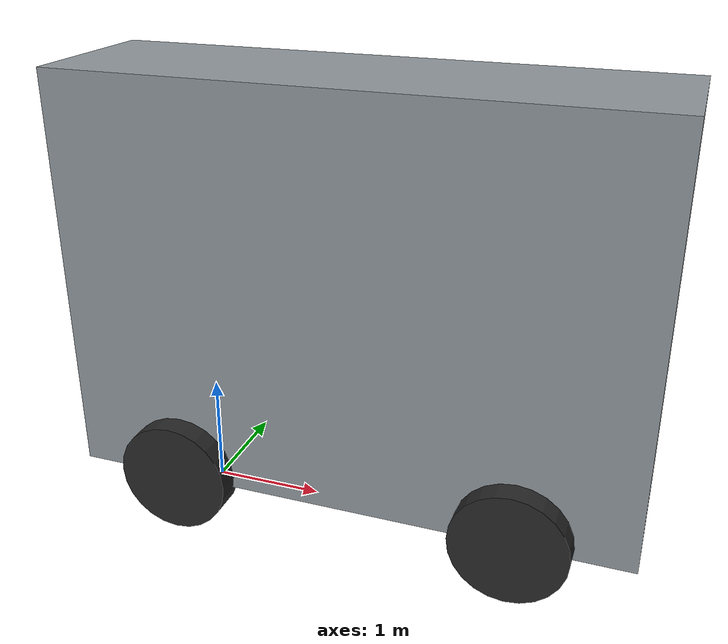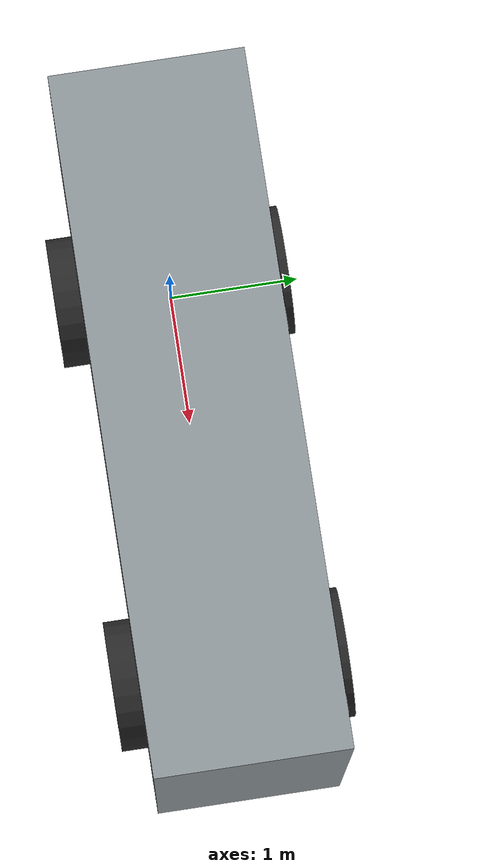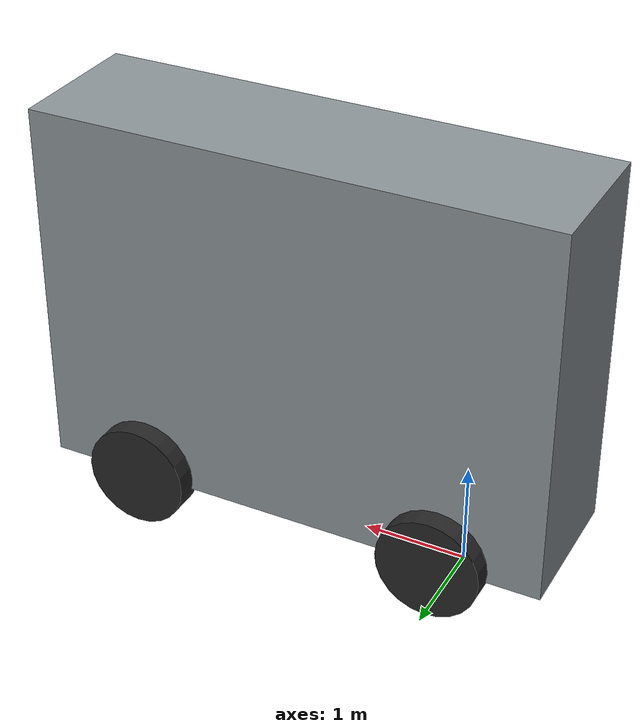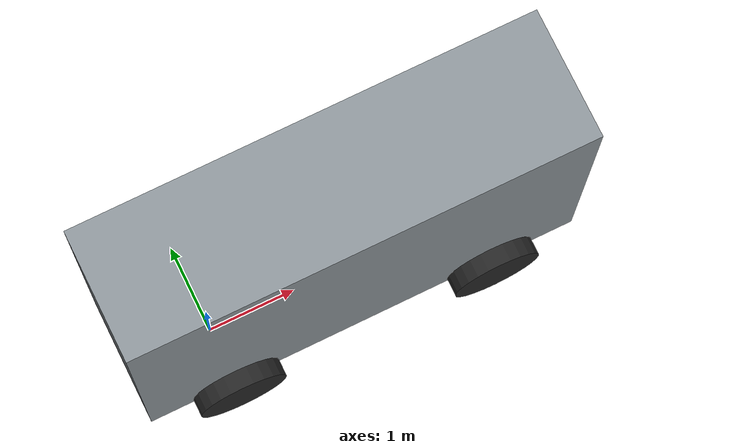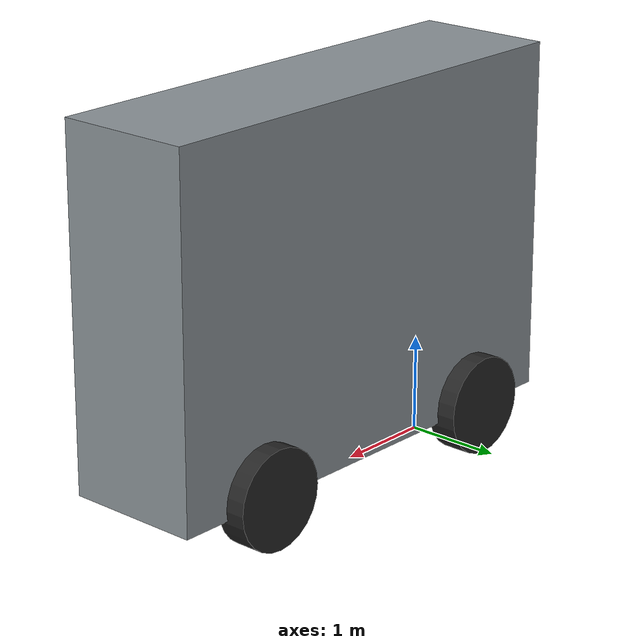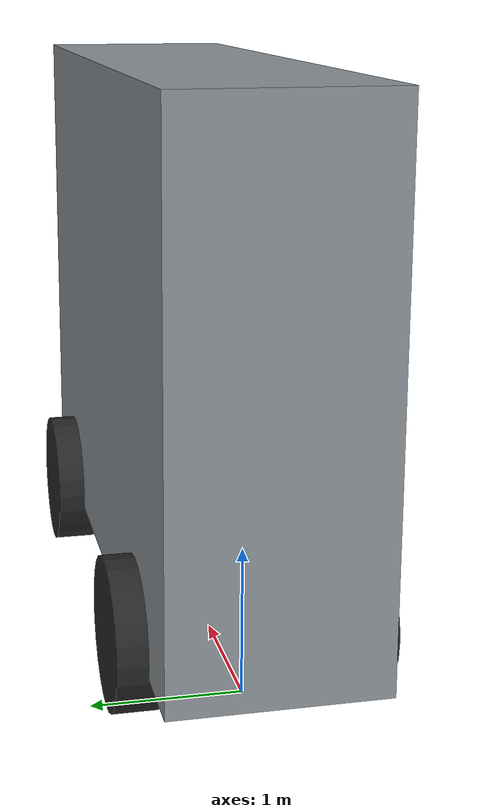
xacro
<?xml version="1.0"?>
<robot name="tunnel_vehicle" xmlns:xacro="http://www.ros.org/wiki/xacro">

  <!-- Frame: base_link at rear axle centre, projected to ground.
       x forward, y left, z up. All dimensions in metres. -->

  <xacro:property name="wheelbase"        value="3.0"/>
  <xacro:property name="track_width"      value="1.5"/>
  <xacro:property name="wheel_radius"     value="0.5"/>
  <xacro:property name="wheel_width"      value="0.3"/>
  <xacro:property name="rear_overhang"    value="1.0"/>
  <xacro:property name="front_overhang"   value="1.0"/>
  <xacro:property name="body_width"       value="1.4"/>
  <xacro:property name="body_top"         value="4.0"/>
  <xacro:property name="ground_clearance" value="0.4"/>
  <xacro:property name="max_steer"        value="0.20944"/>  <!-- 12 deg in rad -->

  <xacro:property name="body_length" value="${wheelbase + rear_overhang + front_overhang}"/>
  <xacro:property name="body_height" value="${body_top - ground_clearance}"/>
  <xacro:property name="body_cx"     value="${wheelbase/2.0 + (front_overhang - rear_overhang)/2.0}"/>
  <xacro:property name="body_cz"     value="${ground_clearance + body_height/2.0}"/>

  <xacro:property name="body_mass"  value="5000.0"/>
  <xacro:property name="wheel_mass" value="100.0"/>

  <xacro:property name="lidar_x"     value="4.2"/>
  <xacro:property name="lidar_z"     value="1.0"/>
  <xacro:property name="lidar_pitch" value="0.20944"/>  <!-- 12 deg, nose down -->

  <xacro:arg name="lidar_noise" default="0.03"/>

  <material name="steel">  <color rgba="0.55 0.58 0.60 1"/></material>
  <material name="rubber"> <color rgba="0.15 0.15 0.15 1"/></material>

  <!-- Chassis -->
  <link name="base_link">
    <visual>
      <origin xyz="${body_cx} 0 ${body_cz}" rpy="0 0 0"/>
      <geometry><box size="${body_length} ${body_width} ${body_height}"/></geometry>
      <material name="steel"/>
    </visual>
    <collision>
      <origin xyz="${body_cx} 0 ${body_cz}" rpy="0 0 0"/>
      <geometry><box size="${body_length} ${body_width} ${body_height}"/></geometry>
    </collision>
    <inertial>
      <!-- Centre of mass placed low, as on a real machine where the
           heavy powertrain sits under the cabin. -->
      <origin xyz="${body_cx} 0 1.0" rpy="0 0 0"/>
      <mass value="${body_mass}"/>
      <inertia
        ixx="${body_mass/12.0 * (body_width*body_width + body_height*body_height)}"
        iyy="${body_mass/12.0 * (body_length*body_length + body_height*body_height)}"
        izz="${body_mass/12.0 * (body_length*body_length + body_width*body_width)}"
        ixy="0" ixz="0" iyz="0"/>
    </inertial>
  </link>

  <!-- Wheel macro. Cylinder axis rotated onto y. -->
  <xacro:macro name="wheel_link" params="name">
    <link name="${name}">
      <visual>
        <origin xyz="0 0 0" rpy="1.5707963 0 0"/>
        <geometry><cylinder radius="${wheel_radius}" length="${wheel_width}"/></geometry>
        <material name="rubber"/>
      </visual>
      <collision>
        <origin xyz="0 0 0" rpy="1.5707963 0 0"/>
        <geometry><cylinder radius="${wheel_radius}" length="${wheel_width}"/></geometry>
      </collision>
      <inertial>
        <origin xyz="0 0 0" rpy="1.5707963 0 0"/>
        <mass value="${wheel_mass}"/>
        <inertia
          ixx="${wheel_mass/12.0 * (3*wheel_radius*wheel_radius + wheel_width*wheel_width)}"
          iyy="${wheel_mass/12.0 * (3*wheel_radius*wheel_radius + wheel_width*wheel_width)}"
          izz="${wheel_mass*wheel_radius*wheel_radius/2.0}"
          ixy="0" ixz="0" iyz="0"/>
      </inertial>
    </link>
  </xacro:macro>

  <!-- Rear wheels: driven, no steering. -->
  <xacro:wheel_link name="rear_left_wheel"/>
  <joint name="rear_left_wheel_joint" type="continuous">
    <parent link="base_link"/>
    <child  link="rear_left_wheel"/>
    <origin xyz="0 ${track_width/2.0} ${wheel_radius}" rpy="0 0 0"/>
    <axis xyz="0 1 0"/>
  </joint>

  <xacro:wheel_link name="rear_right_wheel"/>
  <joint name="rear_right_wheel_joint" type="continuous">
    <parent link="base_link"/>
    <child  link="rear_right_wheel"/>
    <origin xyz="0 ${-track_width/2.0} ${wheel_radius}" rpy="0 0 0"/>
    <axis xyz="0 1 0"/>
  </joint>

  <!-- Front: a steering link between chassis and wheel, so the wheel
       can spin about y while the steer joint rotates about z. -->
  <xacro:macro name="steer_link" params="name">
    <link name="${name}">
      <inertial>
        <mass value="10.0"/>
        <inertia ixx="0.1" iyy="0.1" izz="0.1" ixy="0" ixz="0" iyz="0"/>
      </inertial>
    </link>
  </xacro:macro>

  <xacro:steer_link name="front_left_steer"/>
  <joint name="front_left_steer_joint" type="revolute">
    <parent link="base_link"/>
    <child  link="front_left_steer"/>
    <origin xyz="${wheelbase} ${track_width/2.0} ${wheel_radius}" rpy="0 0 0"/>
    <axis xyz="0 0 1"/>
    <limit lower="${-max_steer}" upper="${max_steer}" effort="10000" velocity="1.0"/>
  </joint>

  <xacro:wheel_link name="front_left_wheel"/>
  <joint name="front_left_wheel_joint" type="continuous">
    <parent link="front_left_steer"/>
    <child  link="front_left_wheel"/>
    <origin xyz="0 0 0" rpy="0 0 0"/>
    <axis xyz="0 1 0"/>
  </joint>

  <xacro:steer_link name="front_right_steer"/>
  <joint name="front_right_steer_joint" type="revolute">
    <parent link="base_link"/>
    <child  link="front_right_steer"/>
    <origin xyz="${wheelbase} ${-track_width/2.0} ${wheel_radius}" rpy="0 0 0"/>
    <axis xyz="0 0 1"/>
    <limit lower="${-max_steer}" upper="${max_steer}" effort="10000" velocity="1.0"/>
  </joint>

  <xacro:wheel_link name="front_right_wheel"/>
  <joint name="front_right_wheel_joint" type="continuous">
    <parent link="front_right_steer"/>
    <child  link="front_right_wheel"/>
    <origin xyz="0 0 0" rpy="0 0 0"/>
    <axis xyz="0 1 0"/>
  </joint>

  <!-- IMU at the rear axle centre, 0.5 m above the floor. Colocated with
       base_link in x and y so that measured yaw rate needs no lever-arm
       correction. -->
  <link name="imu_link">
    <inertial>
      <mass value="0.05"/>
      <inertia ixx="1e-5" iyy="1e-5" izz="1e-5" ixy="0" ixz="0" iyz="0"/>
    </inertial>
  </link>

  <joint name="imu_joint" type="fixed">
    <parent link="base_link"/>
    <child  link="imu_link"/>
    <origin xyz="0 0 0.5" rpy="0 0 0"/>
  </joint>

  <link name="lidar_link">
    <inertial>
      <mass value="1.0"/>
      <inertia ixx="1e-3" iyy="1e-3" izz="1e-3" ixy="0" ixz="0" iyz="0"/>
    </inertial>
  </link>

  <joint name="lidar_joint" type="fixed">
    <parent link="base_link"/>
    <child  link="lidar_link"/>
    <origin xyz="${lidar_x} 0 ${lidar_z}" rpy="0 ${lidar_pitch} 0"/>
  </joint>

  <gazebo>
    <plugin filename="gz-sim-ackermann-steering-system"
            name="gz::sim::systems::AckermannSteering">
      <left_joint>rear_left_wheel_joint</left_joint>
      <right_joint>rear_right_wheel_joint</right_joint>
      <left_steering_joint>front_left_steer_joint</left_steering_joint>
      <right_steering_joint>front_right_steer_joint</right_steering_joint>
      <kingpin_width>${track_width}</kingpin_width>
      <steering_limit>${max_steer}</steering_limit>
      <wheel_base>${wheelbase}</wheel_base>
      <wheel_separation>${track_width}</wheel_separation>
      <wheel_radius>${wheel_radius}</wheel_radius>
      <min_velocity>-2.0</min_velocity>
      <max_velocity>5.0</max_velocity>
      <min_acceleration>-2.0</min_acceleration>
      <max_acceleration>2.0</max_acceleration>
      <topic>cmd_vel</topic>
      <odom_topic>odom</odom_topic>
      <frame_id>odom</frame_id>
      <child_frame_id>base_link</child_frame_id>
      <odom_publish_frequency>50</odom_publish_frequency>
    </plugin>
  </gazebo>

  <gazebo>
    <plugin filename="gz-sim-pose-publisher-system"
            name="gz::sim::systems::PosePublisher">
      <publish_link_pose>false</publish_link_pose>
      <publish_model_pose>true</publish_model_pose>
      <publish_nested_model_pose>false</publish_nested_model_pose>
      <use_pose_vector_msg>false</use_pose_vector_msg>
      <update_frequency>50</update_frequency>
    </plugin>
  </gazebo>

  <gazebo reference="imu_link">
    <sensor name="imu_sensor" type="imu">
      <always_on>true</always_on>
      <update_rate>100</update_rate>
      <topic>imu</topic>
      <gz_frame_id>imu_link</gz_frame_id>
      <imu>
        <angular_velocity>
          <x>
            <noise type="gaussian">
              <mean>0.0</mean>
              <stddev>1.45e-3</stddev>
              <bias_mean>0.0</bias_mean>
              <bias_stddev>0.0</bias_stddev>
            </noise>
          </x>
          <y>
            <noise type="gaussian">
              <mean>0.0</mean>
              <stddev>1.45e-3</stddev>
              <bias_mean>0.0</bias_mean>
              <bias_stddev>0.0</bias_stddev>
            </noise>
          </y>
          <z>
            <noise type="gaussian">
              <mean>0.0</mean>
              <stddev>1.45e-3</stddev>
              <bias_mean>8.7266e-4</bias_mean>
              <bias_stddev>0.0</bias_stddev>
            </noise>
          </z>
        </angular_velocity>
        <linear_acceleration>
          <x><noise type="gaussian"><mean>0.0</mean><stddev>0.0</stddev></noise></x>
          <y><noise type="gaussian"><mean>0.0</mean><stddev>0.0</stddev></noise></y>
          <z><noise type="gaussian"><mean>0.0</mean><stddev>0.0</stddev></noise></z>
        </linear_acceleration>
      </imu>
    </sensor>
  </gazebo>

  <gazebo reference="lidar_link">
    <sensor name="lidar" type="gpu_lidar">
      <always_on>true</always_on>
      <update_rate>20</update_rate>
      <topic>scan</topic>
      <gz_frame_id>lidar_link</gz_frame_id>
      <lidar>
        <scan>
          <horizontal>
            <samples>361</samples>
            <resolution>1</resolution>
            <min_angle>-1.5707963</min_angle>
            <max_angle>1.5707963</max_angle>
          </horizontal>
          <vertical>
            <samples>16</samples>
            <resolution>1</resolution>
            <min_angle>-0.1256637</min_angle>
            <max_angle>0.5986480</max_angle>
          </vertical>
        </scan>
        <range>
          <min>0.5</min>
          <max>30.0</max>
          <resolution>0.01</resolution>
        </range>
        <noise>
          <type>gaussian</type>
          <mean>0.0</mean>
          <stddev>$(arg lidar_noise)</stddev>
        </noise>
      </lidar>
    </sensor>
  </gazebo>

  <gazebo>
    <plugin filename="gz-sim-joint-state-publisher-system"
            name="gz::sim::systems::JointStatePublisher"/>
  </gazebo>

</robot>
